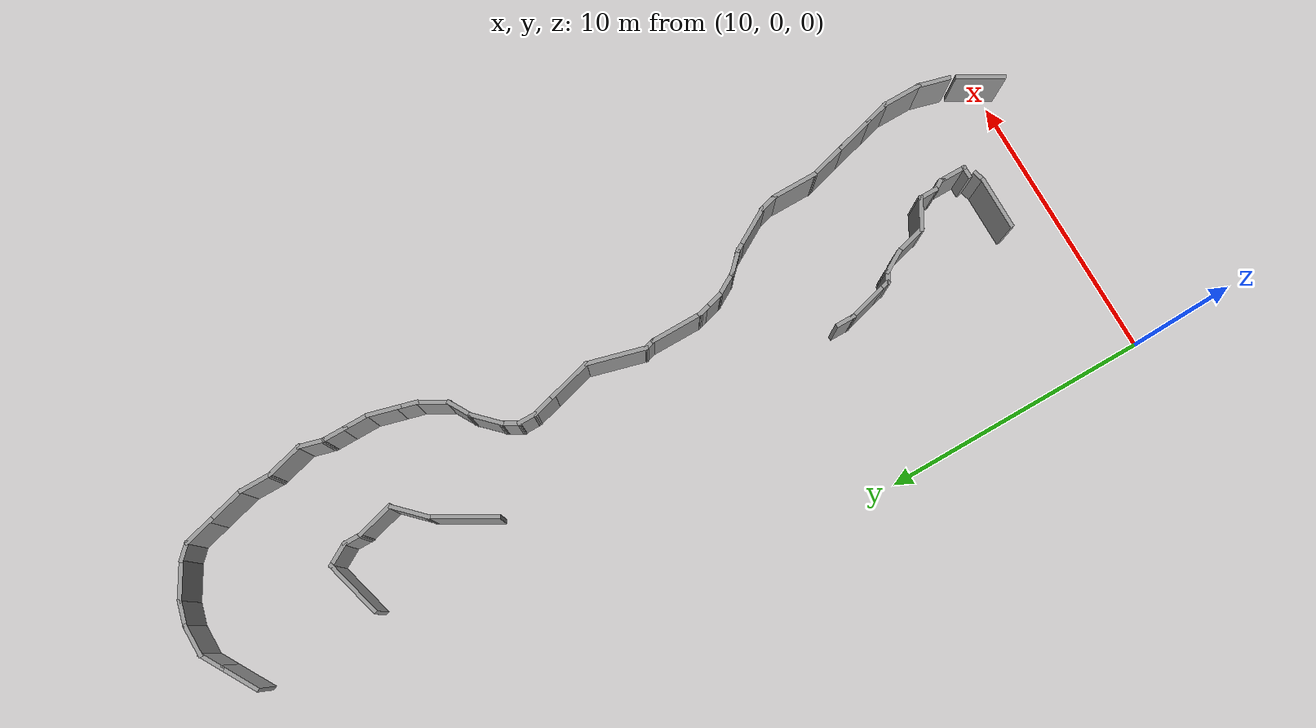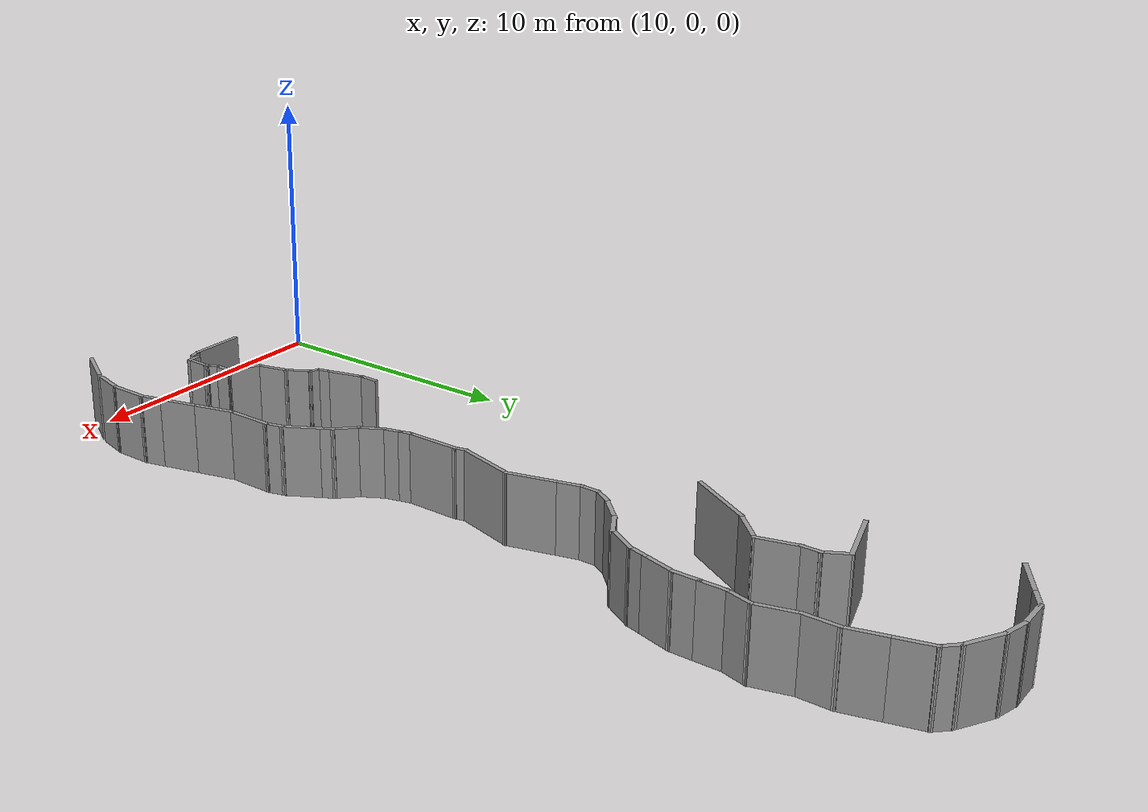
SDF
<sdf version="1.7">
 <world name="default">
  <model name="Untitled">
   <pose>0.112024 16.4674 0 0 -0 0</pose>
   <link name="Wall_100">
    <collision name="Wall_100_Collision">
     <geometry><box><size>1.5 0.15 2.5</size></box></geometry>
     <pose>0 0 1.25 0 -0 0</pose>
    </collision>
    <visual name="Wall_100_Visual">
     <pose>0 0 1.25 0 -0 0</pose>
     <geometry><box><size>1.5 0.15 2.5</size></box></geometry>
     <material>
      <script><uri>file://media/materials/scripts/gazebo.material</uri><name>Gazebo/Grey</name></script>
      <ambient>1 1 1 1</ambient>
     </material>
     <meta><layer>0</layer></meta>
    </visual>
    <pose>19.9845 -6.51025 0 0 -0 2.0944</pose>
   </link>
   <link name="Wall_101">
    <collision name="Wall_101_Collision">
     <geometry><box><size>0.5 0.15 2.5</size></box></geometry>
     <pose>0 0 1.25 0 -0 0</pose>
    </collision>
    <visual name="Wall_101_Visual">
     <pose>0 0 1.25 0 -0 0</pose>
     <geometry><box><size>0.5 0.15 2.5</size></box></geometry>
     <material>
      <script><uri>file://media/materials/scripts/gazebo.material</uri><name>Gazebo/Grey</name></script>
      <ambient>1 1 1 1</ambient>
     </material>
     <meta><layer>0</layer></meta>
    </visual>
    <pose>19.5595 -5.77413 0 0 -0 2.0944</pose>
   </link>
   <link name="Wall_102">
    <collision name="Wall_102_Collision">
     <geometry><box><size>1 0.15 2.5</size></box></geometry>
     <pose>0 0 1.25 0 -0 0</pose>
    </collision>
    <visual name="Wall_102_Visual">
     <pose>0 0 1.25 0 -0 0</pose>
     <geometry><box><size>1 0.15 2.5</size></box></geometry>
     <material>
      <script><uri>file://media/materials/scripts/gazebo.material</uri><name>Gazebo/Grey</name></script>
      <ambient>1 1 1 1</ambient>
     </material>
     <meta><layer>0</layer></meta>
    </visual>
    <pose>19.1715 -5.32205 0 0 -0 2.35619</pose>
   </link>
   <link name="Wall_103">
    <collision name="Wall_103_Collision">
     <geometry><box><size>1 0.15 2.5</size></box></geometry>
     <pose>0 0 1.25 0 -0 0</pose>
    </collision>
    <visual name="Wall_103_Visual">
     <pose>0 0 1.25 0 -0 0</pose>
     <geometry><box><size>1 0.15 2.5</size></box></geometry>
     <material>
      <script><uri>file://media/materials/scripts/gazebo.material</uri><name>Gazebo/Grey</name></script>
      <ambient>1 1 1 1</ambient>
     </material>
     <meta><layer>0</layer></meta>
    </visual>
    <pose>18.6585 -4.65347 0 0 -0 2.0944</pose>
   </link>
   <link name="Wall_104">
    <collision name="Wall_104_Collision">
     <geometry><box><size>0.75 0.15 2.5</size></box></geometry>
     <pose>0 0 1.25 0 -0 0</pose>
    </collision>
    <visual name="Wall_104_Visual">
     <pose>0 0 1.25 0 -0 0</pose>
     <geometry><box><size>0.75 0.15 2.5</size></box></geometry>
     <material>
      <script><uri>file://media/materials/scripts/gazebo.material</uri><name>Gazebo/Grey</name></script>
      <ambient>1 1 1 1</ambient>
     </material>
     <meta><layer>0</layer></meta>
    </visual>
    <pose>18.3683 -3.99564 0 0 -0 1.8326</pose>
   </link>
   <link name="Wall_105">
    <collision name="Wall_105_Collision">
     <geometry><box><size>0.5 0.15 2.5</size></box></geometry>
     <pose>0 0 1.25 0 -0 0</pose>
    </collision>
    <visual name="Wall_105_Visual">
     <pose>0 0 1.25 0 -0 0</pose>
     <geometry><box><size>0.5 0.15 2.5</size></box></geometry>
     <material>
      <script><uri>file://media/materials/scripts/gazebo.material</uri><name>Gazebo/Grey</name></script>
      <ambient>1 1 1 1</ambient>
     </material>
     <meta><layer>0</layer></meta>
    </visual>
    <pose>18.2454 -3.53682 0 0 -0 1.8326</pose>
   </link>
   <link name="Wall_106">
    <collision name="Wall_106_Collision">
     <geometry><box><size>2 0.15 2.5</size></box></geometry>
     <pose>0 0 1.25 0 -0 0</pose>
    </collision>
    <visual name="Wall_106_Visual">
     <pose>0 0 1.25 0 -0 0</pose>
     <geometry><box><size>2 0.15 2.5</size></box></geometry>
     <material>
      <script><uri>file://media/materials/scripts/gazebo.material</uri><name>Gazebo/Grey</name></script>
      <ambient>1 1 1 1</ambient>
     </material>
     <meta><layer>0</layer></meta>
    </visual>
    <pose>18.2001 -2.44278 0 0 -0 1.5708</pose>
   </link>
   <link name="Wall_107">
    <collision name="Wall_107_Collision">
     <geometry><box><size>0.5 0.15 2.5</size></box></geometry>
     <pose>0 0 1.25 0 -0 0</pose>
    </collision>
    <visual name="Wall_107_Visual">
     <pose>0 0 1.25 0 -0 0</pose>
     <geometry><box><size>0.5 0.15 2.5</size></box></geometry>
     <material>
      <script><uri>file://media/materials/scripts/gazebo.material</uri><name>Gazebo/Grey</name></script>
      <ambient>1 1 1 1</ambient>
     </material>
     <meta><layer>0</layer></meta>
    </visual>
    <pose>18.1548 -1.34875 0 0 -0 1.8326</pose>
   </link>
   <link name="Wall_108">
    <collision name="Wall_108_Collision">
     <geometry><box><size>2.25 0.15 2.5</size></box></geometry>
     <pose>0 0 1.25 0 -0 0</pose>
    </collision>
    <visual name="Wall_108_Visual">
     <pose>0 0 1.25 0 -0 0</pose>
     <geometry><box><size>2.25 0.15 2.5</size></box></geometry>
     <material>
      <script><uri>file://media/materials/scripts/gazebo.material</uri><name>Gazebo/Grey</name></script>
      <ambient>1 1 1 1</ambient>
     </material>
     <meta><layer>0</layer></meta>
    </visual>
    <pose>18.3813 -0.165486 0 0 -0 1.309</pose>
   </link>
   <link name="Wall_109">
    <collision name="Wall_109_Collision">
     <geometry><box><size>1.75 0.15 2.5</size></box></geometry>
     <pose>0 0 1.25 0 -0 0</pose>
    </collision>
    <visual name="Wall_109_Visual">
     <pose>0 0 1.25 0 -0 0</pose>
     <geometry><box><size>1.75 0.15 2.5</size></box></geometry>
     <material>
      <script><uri>file://media/materials/scripts/gazebo.material</uri><name>Gazebo/Grey</name></script>
      <ambient>1 1 1 1</ambient>
     </material>
     <meta><layer>0</layer></meta>
    </visual>
    <pose>18.446 1.62148 0 0 -0 1.8326</pose>
   </link>
   <link name="Wall_110">
    <collision name="Wall_110_Collision">
     <geometry><box><size>1 0.15 2.5</size></box></geometry>
     <pose>0 0 1.25 0 -0 0</pose>
    </collision>
    <visual name="Wall_110_Visual">
     <pose>0 0 1.25 0 -0 0</pose>
     <geometry><box><size>1 0.15 2.5</size></box></geometry>
     <material>
      <script><uri>file://media/materials/scripts/gazebo.material</uri><name>Gazebo/Grey</name></script>
      <ambient>1 1 1 1</ambient>
     </material>
     <meta><layer>0</layer></meta>
    </visual>
    <pose>18.1289 2.80473 0 0 -0 1.8326</pose>
   </link>
   <link name="Wall_111">
    <collision name="Wall_111_Collision">
     <geometry><box><size>0.75 0.15 2.5</size></box></geometry>
     <pose>0 0 1.25 0 -0 0</pose>
    </collision>
    <visual name="Wall_111_Visual">
     <pose>0 0 1.25 0 -0 0</pose>
     <geometry><box><size>0.75 0.15 2.5</size></box></geometry>
     <material>
      <script><uri>file://media/materials/scripts/gazebo.material</uri><name>Gazebo/Grey</name></script>
      <ambient>1 1 1 1</ambient>
     </material>
     <meta><layer>0</layer></meta>
    </visual>
    <pose>18.0189 3.51525 0 0 -0 1.5708</pose>
   </link>
   <link name="Wall_112">
    <collision name="Wall_112_Collision">
     <geometry><box><size>0.75 0.15 2.5</size></box></geometry>
     <pose>0 0 1.25 0 -0 0</pose>
    </collision>
    <visual name="Wall_112_Visual">
     <pose>0 0 1.25 0 -0 0</pose>
     <geometry><box><size>0.75 0.15 2.5</size></box></geometry>
     <material>
      <script><uri>file://media/materials/scripts/gazebo.material</uri><name>Gazebo/Grey</name></script>
      <ambient>1 1 1 1</ambient>
     </material>
     <meta><layer>0</layer></meta>
    </visual>
    <pose>18.1689 4.07506 0 0 -0 1.0472</pose>
   </link>
   <link name="Wall_113">
    <collision name="Wall_113_Collision">
     <geometry><box><size>1.25 0.15 2.5</size></box></geometry>
     <pose>0 0 1.25 0 -0 0</pose>
    </collision>
    <visual name="Wall_113_Visual">
     <pose>0 0 1.25 0 -0 0</pose>
     <geometry><box><size>1.25 0.15 2.5</size></box></geometry>
     <material>
      <script><uri>file://media/materials/scripts/gazebo.material</uri><name>Gazebo/Grey</name></script>
      <ambient>1 1 1 1</ambient>
     </material>
     <meta><layer>0</layer></meta>
    </visual>
    <pose>18.7078 4.72378 0 0 -0 0.785398</pose>
   </link>
   <link name="Wall_114">
    <collision name="Wall_114_Collision">
     <geometry><box><size>1 0.15 2.5</size></box></geometry>
     <pose>0 0 1.25 0 -0 0</pose>
    </collision>
    <visual name="Wall_114_Visual">
     <pose>0 0 1.25 0 -0 0</pose>
     <geometry><box><size>1 0.15 2.5</size></box></geometry>
     <material>
      <script><uri>file://media/materials/scripts/gazebo.material</uri><name>Gazebo/Grey</name></script>
      <ambient>1 1 1 1</ambient>
     </material>
     <meta><layer>0</layer></meta>
    </visual>
    <pose>19.4648 5.32519 0 0 -0 0.523599</pose>
   </link>
   <link name="Wall_115">
    <collision name="Wall_115_Collision">
     <geometry><box><size>1.25 0.15 2.5</size></box></geometry>
     <pose>0 0 1.25 0 -0 0</pose>
    </collision>
    <visual name="Wall_115_Visual">
     <pose>0 0 1.25 0 -0 0</pose>
     <geometry><box><size>1.25 0.15 2.5</size></box></geometry>
     <material>
      <script><uri>file://media/materials/scripts/gazebo.material</uri><name>Gazebo/Grey</name></script>
      <ambient>1 1 1 1</ambient>
     </material>
     <meta><layer>0</layer></meta>
    </visual>
    <pose>20.1078 6.014 0 0 -0 1.0472</pose>
   </link>
   <link name="Wall_116">
    <collision name="Wall_116_Collision">
     <geometry><box><size>0.75 0.15 2.5</size></box></geometry>
     <pose>0 0 1.25 0 -0 0</pose>
    </collision>
    <visual name="Wall_116_Visual">
     <pose>0 0 1.25 0 -0 0</pose>
     <geometry><box><size>0.75 0.15 2.5</size></box></geometry>
     <material>
      <script><uri>file://media/materials/scripts/gazebo.material</uri><name>Gazebo/Grey</name></script>
      <ambient>1 1 1 1</ambient>
     </material>
     <meta><layer>0</layer></meta>
    </visual>
    <pose>20.4605 6.78009 0 0 -0 1.309</pose>
   </link>
   <link name="Wall_117">
    <collision name="Wall_117_Collision">
     <geometry><box><size>1.25 0.15 2.5</size></box></geometry>
     <pose>0 0 1.25 0 -0 0</pose>
    </collision>
    <visual name="Wall_117_Visual">
     <pose>0 0 1.25 0 -0 0</pose>
     <geometry><box><size>1.25 0.15 2.5</size></box></geometry>
     <material>
      <script><uri>file://media/materials/scripts/gazebo.material</uri><name>Gazebo/Grey</name></script>
      <ambient>1 1 1 1</ambient>
     </material>
     <meta><layer>0</layer></meta>
    </visual>
    <pose>20.6805 7.60113 0 0 -0 1.309</pose>
   </link>
   <link name="Wall_118">
    <collision name="Wall_118_Collision">
     <geometry><box><size>1 0.15 2.5</size></box></geometry>
     <pose>0 0 1.25 0 -0 0</pose>
    </collision>
    <visual name="Wall_118_Visual">
     <pose>0 0 1.25 0 -0 0</pose>
     <geometry><box><size>1 0.15 2.5</size></box></geometry>
     <material>
      <script><uri>file://media/materials/scripts/gazebo.material</uri><name>Gazebo/Grey</name></script>
      <ambient>1 1 1 1</ambient>
     </material>
     <meta><layer>0</layer></meta>
    </visual>
    <pose>20.8228 8.55739 0 0 -0 1.5708</pose>
   </link>
   <link name="Wall_119">
    <collision name="Wall_119_Collision">
     <geometry><box><size>1 0.15 2.5</size></box></geometry>
     <pose>0 0 1.25 0 -0 0</pose>
    </collision>
    <visual name="Wall_119_Visual">
     <pose>0 0 1.25 0 -0 0</pose>
     <geometry><box><size>1 0.15 2.5</size></box></geometry>
     <material>
      <script><uri>file://media/materials/scripts/gazebo.material</uri><name>Gazebo/Grey</name></script>
      <ambient>1 1 1 1</ambient>
     </material>
     <meta><layer>0</layer></meta>
    </visual>
    <pose>20.8228 9.40739 0 0 -0 1.5708</pose>
   </link>
   <link name="Wall_120">
    <collision name="Wall_120_Collision">
     <geometry><box><size>1 0.15 2.5</size></box></geometry>
     <pose>0 0 1.25 0 -0 0</pose>
    </collision>
    <visual name="Wall_120_Visual">
     <pose>0 0 1.25 0 -0 0</pose>
     <geometry><box><size>1 0.15 2.5</size></box></geometry>
     <material>
      <script><uri>file://media/materials/scripts/gazebo.material</uri><name>Gazebo/Grey</name></script>
      <ambient>1 1 1 1</ambient>
     </material>
     <meta><layer>0</layer></meta>
    </visual>
    <pose>20.9328 10.2429 0 0 -0 1.309</pose>
   </link>
   <link name="Wall_121">
    <collision name="Wall_121_Collision">
     <geometry><box><size>1.5 0.15 2.5</size></box></geometry>
     <pose>0 0 1.25 0 -0 0</pose>
    </collision>
    <visual name="Wall_121_Visual">
     <pose>0 0 1.25 0 -0 0</pose>
     <geometry><box><size>1.5 0.15 2.5</size></box></geometry>
     <material>
      <script><uri>file://media/materials/scripts/gazebo.material</uri><name>Gazebo/Grey</name></script>
      <ambient>1 1 1 1</ambient>
     </material>
     <meta><layer>0</layer></meta>
    </visual>
    <pose>20.8681 11.3054 0 0 -0 1.8326</pose>
   </link>
   <link name="Wall_122">
    <collision name="Wall_122_Collision">
     <geometry><box><size>1.25 0.15 2.5</size></box></geometry>
     <pose>0 0 1.25 0 -0 0</pose>
    </collision>
    <visual name="Wall_122_Visual">
     <pose>0 0 1.25 0 -0 0</pose>
     <geometry><box><size>1.25 0.15 2.5</size></box></geometry>
     <material>
      <script><uri>file://media/materials/scripts/gazebo.material</uri><name>Gazebo/Grey</name></script>
      <ambient>1 1 1 1</ambient>
     </material>
     <meta><layer>0</layer></meta>
    </visual>
    <pose>20.6934 12.5074 0 0 -0 1.5708</pose>
   </link>
   <link name="Wall_123">
    <collision name="Wall_123_Collision">
     <geometry><box><size>1.5 0.15 2.5</size></box></geometry>
     <pose>0 0 1.25 0 -0 0</pose>
    </collision>
    <visual name="Wall_123_Visual">
     <pose>0 0 1.25 0 -0 0</pose>
     <geometry><box><size>1.5 0.15 2.5</size></box></geometry>
     <material>
      <script><uri>file://media/materials/scripts/gazebo.material</uri><name>Gazebo/Grey</name></script>
      <ambient>1 1 1 1</ambient>
     </material>
     <meta><layer>0</layer></meta>
    </visual>
    <pose>20.5187 13.7094 0 0 -0 1.8326</pose>
   </link>
   <link name="Wall_124">
    <collision name="Wall_124_Collision">
     <geometry><box><size>1.25 0.15 2.5</size></box></geometry>
     <pose>0 0 1.25 0 -0 0</pose>
    </collision>
    <visual name="Wall_124_Visual">
     <pose>0 0 1.25 0 -0 0</pose>
     <geometry><box><size>1.25 0.15 2.5</size></box></geometry>
     <material>
      <script><uri>file://media/materials/scripts/gazebo.material</uri><name>Gazebo/Grey</name></script>
      <ambient>1 1 1 1</ambient>
     </material>
     <meta><layer>0</layer></meta>
    </visual>
    <pose>20.2017 14.8927 0 0 -0 1.8326</pose>
   </link>
   <link name="Wall_125">
    <collision name="Wall_125_Collision">
     <geometry><box><size>0.75 0.15 2.5</size></box></geometry>
     <pose>0 0 1.25 0 -0 0</pose>
    </collision>
    <visual name="Wall_125_Visual">
     <pose>0 0 1.25 0 -0 0</pose>
     <geometry><box><size>0.75 0.15 2.5</size></box></geometry>
     <material>
      <script><uri>file://media/materials/scripts/gazebo.material</uri><name>Gazebo/Grey</name></script>
      <ambient>1 1 1 1</ambient>
     </material>
     <meta><layer>0</layer></meta>
    </visual>
    <pose>19.8472 15.6361 0 0 -0 2.35619</pose>
   </link>
   <link name="Wall_126">
    <collision name="Wall_126_Collision">
     <geometry><box><size>1.5 0.15 2.5</size></box></geometry>
     <pose>0 0 1.25 0 -0 0</pose>
    </collision>
    <visual name="Wall_126_Visual">
     <pose>0 0 1.25 0 -0 0</pose>
     <geometry><box><size>1.5 0.15 2.5</size></box></geometry>
     <material>
      <script><uri>file://media/materials/scripts/gazebo.material</uri><name>Gazebo/Grey</name></script>
      <ambient>1 1 1 1</ambient>
     </material>
     <meta><layer>0</layer></meta>
    </visual>
    <pose>19.0505 16.1857 0 0 -0 2.61799</pose>
   </link>
   <link name="Wall_127">
    <collision name="Wall_127_Collision">
     <geometry><box><size>1 0.15 2.5</size></box></geometry>
     <pose>0 0 1.25 0 -0 0</pose>
    </collision>
    <visual name="Wall_127_Visual">
     <pose>0 0 1.25 0 -0 0</pose>
     <geometry><box><size>1 0.15 2.5</size></box></geometry>
     <material>
      <script><uri>file://media/materials/scripts/gazebo.material</uri><name>Gazebo/Grey</name></script>
      <ambient>1 1 1 1</ambient>
     </material>
     <meta><layer>0</layer></meta>
    </visual>
    <pose>18.0554 16.6332 0 0 -0 2.87979</pose>
   </link>
   <link name="Wall_128">
    <collision name="Wall_128_Collision">
     <geometry><box><size>1.25 0.15 2.5</size></box></geometry>
     <pose>0 0 1.25 0 -0 0</pose>
    </collision>
    <visual name="Wall_128_Visual">
     <pose>0 0 1.25 0 -0 0</pose>
     <geometry><box><size>1.25 0.15 2.5</size></box></geometry>
     <material>
      <script><uri>file://media/materials/scripts/gazebo.material</uri><name>Gazebo/Grey</name></script>
      <ambient>1 1 1 1</ambient>
     </material>
     <meta><layer>0</layer></meta>
    </visual>
    <pose>17.0949 16.7432 0 0 -0 3.14159</pose>
   </link>
   <link name="Wall_129">
    <collision name="Wall_129_Collision">
     <geometry><box><size>1 0.15 2.5</size></box></geometry>
     <pose>0 0 1.25 0 -0 0</pose>
    </collision>
    <visual name="Wall_129_Visual">
     <pose>0 0 1.25 0 -0 0</pose>
     <geometry><box><size>1 0.15 2.5</size></box></geometry>
     <material>
      <script><uri>file://media/materials/scripts/gazebo.material</uri><name>Gazebo/Grey</name></script>
      <ambient>1 1 1 1</ambient>
     </material>
     <meta><layer>0</layer></meta>
    </visual>
    <pose>16.1768 16.5307 0 0 -0 -2.61799</pose>
   </link>
   <link name="Wall_130">
    <collision name="Wall_130_Collision">
     <geometry><box><size>1.5 0.15 2.5</size></box></geometry>
     <pose>0 0 1.25 0 -0 0</pose>
    </collision>
    <visual name="Wall_130_Visual">
     <pose>0 0 1.25 0 -0 0</pose>
     <geometry><box><size>1.5 0.15 2.5</size></box></geometry>
     <material>
      <script><uri>file://media/materials/scripts/gazebo.material</uri><name>Gazebo/Grey</name></script>
      <ambient>1 1 1 1</ambient>
     </material>
     <meta><layer>0</layer></meta>
    </visual>
    <pose>15.2242 15.9807 0 0 -0 -2.61799</pose>
   </link>
   <link name="Wall_18">
    <collision name="Wall_18_Collision">
     <geometry><box><size>2 0.15 2.5</size></box></geometry>
     <pose>0 0 1.25 0 -0 0</pose>
    </collision>
    <visual name="Wall_18_Visual">
     <pose>0 0 1.25 0 -0 0</pose>
     <geometry><box><size>2 0.15 2.5</size></box></geometry>
     <material>
      <script><uri>file://media/materials/scripts/gazebo.material</uri><name>Gazebo/Grey</name></script>
      <ambient>1 1 1 1</ambient>
     </material>
     <meta><layer>0</layer></meta>
    </visual>
    <pose>16.4497 -14.2243 0 0 -0 0</pose>
   </link>
   <link name="Wall_19">
    <collision name="Wall_19_Collision">
     <geometry><box><size>0.5 0.15 2.5</size></box></geometry>
     <pose>0 0 1.25 0 -0 0</pose>
    </collision>
    <visual name="Wall_19_Visual">
     <pose>0 0 1.25 0 -0 0</pose>
     <geometry><box><size>0.5 0.15 2.5</size></box></geometry>
     <material>
      <script><uri>file://media/materials/scripts/gazebo.material</uri><name>Gazebo/Grey</name></script>
      <ambient>1 1 1 1</ambient>
     </material>
     <meta><layer>0</layer></meta>
    </visual>
    <pose>17.5438 -14.179 0 0 -0 0.261799</pose>
   </link>
   <link name="Wall_30">
    <collision name="Wall_30_Collision">
     <geometry><box><size>0.5 0.15 2.5</size></box></geometry>
     <pose>0 0 1.25 0 -0 0</pose>
    </collision>
    <visual name="Wall_30_Visual">
     <pose>0 0 1.25 0 -0 0</pose>
     <geometry><box><size>0.5 0.15 2.5</size></box></geometry>
     <material>
      <script><uri>file://media/materials/scripts/gazebo.material</uri><name>Gazebo/Grey</name></script>
      <ambient>1 1 1 1</ambient>
     </material>
     <meta><layer>0</layer></meta>
    </visual>
    <pose>17.9162 -13.8837 0 0 -0 0</pose>
   </link>
   <link name="Wall_31">
    <collision name="Wall_31_Collision">
     <geometry><box><size>1 0.15 2.5</size></box></geometry>
     <pose>0 0 1.25 0 -0 0</pose>
    </collision>
    <visual name="Wall_31_Visual">
     <pose>0 0 1.25 0 -0 0</pose>
     <geometry><box><size>1 0.15 2.5</size></box></geometry>
     <material>
      <script><uri>file://media/materials/scripts/gazebo.material</uri><name>Gazebo/Grey</name></script>
      <ambient>1 1 1 1</ambient>
     </material>
     <meta><layer>0</layer></meta>
    </visual>
    <pose>18.0912 -13.4587 0 0 -0 1.5708</pose>
   </link>
   <link name="Wall_32">
    <collision name="Wall_32_Collision">
     <geometry><box><size>0.25 0.15 2.5</size></box></geometry>
     <pose>0 0 1.25 0 -0 0</pose>
    </collision>
    <visual name="Wall_32_Visual">
     <pose>0 0 1.25 0 -0 0</pose>
     <geometry><box><size>0.25 0.15 2.5</size></box></geometry>
     <material>
      <script><uri>file://media/materials/scripts/gazebo.material</uri><name>Gazebo/Grey</name></script>
      <ambient>1 1 1 1</ambient>
     </material>
     <meta><layer>0</layer></meta>
    </visual>
    <pose>18.0912 -12.9837 0 0 -0 1.5708</pose>
   </link>
   <link name="Wall_33">
    <collision name="Wall_33_Collision">
     <geometry><box><size>0.5 0.15 2.5</size></box></geometry>
     <pose>0 0 1.25 0 -0 0</pose>
    </collision>
    <visual name="Wall_33_Visual">
     <pose>0 0 1.25 0 -0 0</pose>
     <geometry><box><size>0.5 0.15 2.5</size></box></geometry>
     <material>
      <script><uri>file://media/materials/scripts/gazebo.material</uri><name>Gazebo/Grey</name></script>
      <ambient>1 1 1 1</ambient>
     </material>
     <meta><layer>0</layer></meta>
    </visual>
    <pose>18.0037 -12.7821 0 0 -0 2.0944</pose>
   </link>
   <link name="Wall_34">
    <collision name="Wall_34_Collision">
     <geometry><box><size>0.75 0.15 2.5</size></box></geometry>
     <pose>0 0 1.25 0 -0 0</pose>
    </collision>
    <visual name="Wall_34_Visual">
     <pose>0 0 1.25 0 -0 0</pose>
     <geometry><box><size>0.75 0.15 2.5</size></box></geometry>
     <material>
      <script><uri>file://media/materials/scripts/gazebo.material</uri><name>Gazebo/Grey</name></script>
      <ambient>1 1 1 1</ambient>
     </material>
     <meta><layer>0</layer></meta>
    </visual>
    <pose>17.9162 -12.3306 0 0 -0 1.5708</pose>
   </link>
   <link name="Wall_35">
    <collision name="Wall_35_Collision">
     <geometry><box><size>1.25 0.15 2.5</size></box></geometry>
     <pose>0 0 1.25 0 -0 0</pose>
    </collision>
    <visual name="Wall_35_Visual">
     <pose>0 0 1.25 0 -0 0</pose>
     <geometry><box><size>1.25 0.15 2.5</size></box></geometry>
     <material>
      <script><uri>file://media/materials/scripts/gazebo.material</uri><name>Gazebo/Grey</name></script>
      <ambient>1 1 1 1</ambient>
     </material>
     <meta><layer>0</layer></meta>
    </visual>
    <pose>17.4399 -11.7556 0 0 -0 2.61799</pose>
   </link>
   <link name="Wall_36">
    <collision name="Wall_36_Collision">
     <geometry><box><size>1.25 0.15 2.5</size></box></geometry>
     <pose>0 0 1.25 0 -0 0</pose>
    </collision>
    <visual name="Wall_36_Visual">
     <pose>0 0 1.25 0 -0 0</pose>
     <geometry><box><size>1.25 0.15 2.5</size></box></geometry>
     <material>
      <script><uri>file://media/materials/scripts/gazebo.material</uri><name>Gazebo/Grey</name></script>
      <ambient>1 1 1 1</ambient>
     </material>
     <meta><layer>0</layer></meta>
    </visual>
    <pose>16.8212 -10.9493 0 0 -0 1.8326</pose>
   </link>
   <link name="Wall_37">
    <collision name="Wall_37_Collision">
     <geometry><box><size>1 0.15 2.5</size></box></geometry>
     <pose>0 0 1.25 0 -0 0</pose>
    </collision>
    <visual name="Wall_37_Visual">
     <pose>0 0 1.25 0 -0 0</pose>
     <geometry><box><size>1 0.15 2.5</size></box></geometry>
     <material>
      <script><uri>file://media/materials/scripts/gazebo.material</uri><name>Gazebo/Grey</name></script>
      <ambient>1 1 1 1</ambient>
     </material>
     <meta><layer>0</layer></meta>
    </visual>
    <pose>16.4664 -10.05 0 0 -0 2.0944</pose>
   </link>
   <link name="Wall_38">
    <collision name="Wall_38_Collision">
     <geometry><box><size>0.5 0.15 2.5</size></box></geometry>
     <pose>0 0 1.25 0 -0 0</pose>
    </collision>
    <visual name="Wall_38_Visual">
     <pose>0 0 1.25 0 -0 0</pose>
     <geometry><box><size>0.5 0.15 2.5</size></box></geometry>
     <material>
      <script><uri>file://media/materials/scripts/gazebo.material</uri><name>Gazebo/Grey</name></script>
      <ambient>1 1 1 1</ambient>
     </material>
     <meta><layer>0</layer></meta>
    </visual>
    <pose>16.1023 -9.59441 0 0 -0 2.61799</pose>
   </link>
   <link name="Wall_39">
    <collision name="Wall_39_Collision">
     <geometry><box><size>0.5 0.15 2.5</size></box></geometry>
     <pose>0 0 1.25 0 -0 0</pose>
    </collision>
    <visual name="Wall_39_Visual">
     <pose>0 0 1.25 0 -0 0</pose>
     <geometry><box><size>0.5 0.15 2.5</size></box></geometry>
     <material>
      <script><uri>file://media/materials/scripts/gazebo.material</uri><name>Gazebo/Grey</name></script>
      <ambient>1 1 1 1</ambient>
     </material>
     <meta><layer>0</layer></meta>
    </visual>
    <pose>15.9055 -9.33788 0 0 -0 1.8326</pose>
   </link>
   <link name="Wall_40">
    <collision name="Wall_40_Collision">
     <geometry><box><size>1.5 0.15 2.5</size></box></geometry>
     <pose>0 0 1.25 0 -0 0</pose>
    </collision>
    <visual name="Wall_40_Visual">
     <pose>0 0 1.25 0 -0 0</pose>
     <geometry><box><size>1.5 0.15 2.5</size></box></geometry>
     <material>
      <script><uri>file://media/materials/scripts/gazebo.material</uri><name>Gazebo/Grey</name></script>
      <ambient>1 1 1 1</ambient>
     </material>
     <meta><layer>0</layer></meta>
    </visual>
    <pose>15.6855 -8.51684 0 0 -0 1.8326</pose>
   </link>
   <link name="Wall_41">
    <collision name="Wall_41_Collision">
     <geometry><box><size>0.75 0.15 2.5</size></box></geometry>
     <pose>0 0 1.25 0 -0 0</pose>
    </collision>
    <visual name="Wall_41_Visual">
     <pose>0 0 1.25 0 -0 0</pose>
     <geometry><box><size>0.75 0.15 2.5</size></box></geometry>
     <material>
      <script><uri>file://media/materials/scripts/gazebo.material</uri><name>Gazebo/Grey</name></script>
      <ambient>1 1 1 1</ambient>
     </material>
     <meta><layer>0</layer></meta>
    </visual>
    <pose>15.5108 -7.56484 0 0 -0 1.5708</pose>
   </link>
   <link name="Wall_52">
    <collision name="Wall_52_Collision">
     <geometry><box><size>2.5 0.15 2.5</size></box></geometry>
     <pose>0 0 1.25 0 -0 0</pose>
    </collision>
    <visual name="Wall_52_Visual">
     <pose>0 0 1.25 0 -0 0</pose>
     <geometry><box><size>2.5 0.15 2.5</size></box></geometry>
     <material>
      <script><uri>file://media/materials/scripts/gazebo.material</uri><name>Gazebo/Grey</name></script>
      <ambient>1 1 1 1</ambient>
     </material>
     <meta><layer>0</layer></meta>
    </visual>
    <pose>16.2043 6.99203 0 0 -0 1.0472</pose>
   </link>
   <link name="Wall_53">
    <collision name="Wall_53_Collision">
     <geometry><box><size>1.5 0.15 2.5</size></box></geometry>
     <pose>0 0 1.25 0 -0 0</pose>
    </collision>
    <visual name="Wall_53_Visual">
     <pose>0 0 1.25 0 -0 0</pose>
     <geometry><box><size>1.5 0.15 2.5</size></box></geometry>
     <material>
      <script><uri>file://media/materials/scripts/gazebo.material</uri><name>Gazebo/Grey</name></script>
      <ambient>1 1 1 1</ambient>
     </material>
     <meta><layer>0</layer></meta>
    </visual>
    <pose>17.2691 8.4869 0 0 -0 0.785398</pose>
   </link>
   <link name="Wall_54">
    <collision name="Wall_54_Collision">
     <geometry><box><size>1.5 0.15 2.5</size></box></geometry>
     <pose>0 0 1.25 0 -0 0</pose>
    </collision>
    <visual name="Wall_54_Visual">
     <pose>0 0 1.25 0 -0 0</pose>
     <geometry><box><size>1.5 0.15 2.5</size></box></geometry>
     <material>
      <script><uri>file://media/materials/scripts/gazebo.material</uri><name>Gazebo/Grey</name></script>
      <ambient>1 1 1 1</ambient>
     </material>
     <meta><layer>0</layer></meta>
    </visual>
    <pose>17.5717 9.6162 0 0 -0 1.8326</pose>
   </link>
   <link name="Wall_55">
    <collision name="Wall_55_Collision">
     <geometry><box><size>0.75 0.15 2.5</size></box></geometry>
     <pose>0 0 1.25 0 -0 0</pose>
    </collision>
    <visual name="Wall_55_Visual">
     <pose>0 0 1.25 0 -0 0</pose>
     <geometry><box><size>0.75 0.15 2.5</size></box></geometry>
     <material>
      <script><uri>file://media/materials/scripts/gazebo.material</uri><name>Gazebo/Grey</name></script>
      <ambient>1 1 1 1</ambient>
     </material>
     <meta><layer>0</layer></meta>
    </visual>
    <pose>17.397 10.5682 0 0 -0 1.5708</pose>
   </link>
   <link name="Wall_56">
    <collision name="Wall_56_Collision">
     <geometry><box><size>1 0.15 2.5</size></box></geometry>
     <pose>0 0 1.25 0 -0 0</pose>
    </collision>
    <visual name="Wall_56_Visual">
     <pose>0 0 1.25 0 -0 0</pose>
     <geometry><box><size>1 0.15 2.5</size></box></geometry>
     <material>
      <script><uri>file://media/materials/scripts/gazebo.material</uri><name>Gazebo/Grey</name></script>
      <ambient>1 1 1 1</ambient>
     </material>
     <meta><layer>0</layer></meta>
    </visual>
    <pose>17.1845 11.2363 0 0 -0 2.0944</pose>
   </link>
   <link name="Wall_57">
    <collision name="Wall_57_Collision">
     <geometry><box><size>2.25 0.15 2.5</size></box></geometry>
     <pose>0 0 1.25 0 -0 0</pose>
    </collision>
    <visual name="Wall_57_Visual">
     <pose>0 0 1.25 0 -0 0</pose>
     <geometry><box><size>2.25 0.15 2.5</size></box></geometry>
     <material>
      <script><uri>file://media/materials/scripts/gazebo.material</uri><name>Gazebo/Grey</name></script>
      <ambient>1 1 1 1</ambient>
     </material>
     <meta><layer>0</layer></meta>
    </visual>
    <pose>15.9578 11.3326 0 0 -0 -2.87979</pose>
   </link>
   <link name="Wall_91">
    <collision name="Wall_91_Collision">
     <geometry><box><size>1.75 0.15 2.5</size></box></geometry>
     <pose>0 0 1.25 0 -0 0</pose>
    </collision>
    <visual name="Wall_91_Visual">
     <pose>0 0 1.25 0 -0 0</pose>
     <geometry><box><size>1.75 0.15 2.5</size></box></geometry>
     <material>
      <script><uri>file://media/materials/scripts/gazebo.material</uri><name>Gazebo/Grey</name></script>
      <ambient>1 1 1 1</ambient>
     </material>
     <meta><layer>0</layer></meta>
    </visual>
    <pose>20.589 -16.1147 0 0 -0 -2.0944</pose>
   </link>
   <link name="Wall_93">
    <collision name="Wall_93_Collision">
     <geometry><box><size>1.25 0.15 2.5</size></box></geometry>
     <pose>0 0 1.25 0 -0 0</pose>
    </collision>
    <visual name="Wall_93_Visual">
     <pose>0 0 1.25 0 -0 0</pose>
     <geometry><box><size>1.25 0.15 2.5</size></box></geometry>
     <material>
      <script><uri>file://media/materials/scripts/gazebo.material</uri><name>Gazebo/Grey</name></script>
      <ambient>1 1 1 1</ambient>
     </material>
     <meta><layer>0</layer></meta>
    </visual>
    <pose>21.2537 -14.5847 0 0 -0 1.309</pose>
   </link>
   <link name="Wall_94">
    <collision name="Wall_94_Collision">
     <geometry><box><size>1.5 0.15 2.5</size></box></geometry>
     <pose>0 0 1.25 0 -0 0</pose>
    </collision>
    <visual name="Wall_94_Visual">
     <pose>0 0 1.25 0 -0 0</pose>
     <geometry><box><size>1.5 0.15 2.5</size></box></geometry>
     <material>
      <script><uri>file://media/materials/scripts/gazebo.material</uri><name>Gazebo/Grey</name></script>
      <ambient>1 1 1 1</ambient>
     </material>
     <meta><layer>0</layer></meta>
    </visual>
    <pose>21.3961 -13.3784 0 0 -0 1.5708</pose>
   </link>
   <link name="Wall_95">
    <collision name="Wall_95_Collision">
     <geometry><box><size>1 0.15 2.5</size></box></geometry>
     <pose>0 0 1.25 0 -0 0</pose>
    </collision>
    <visual name="Wall_95_Visual">
     <pose>0 0 1.25 0 -0 0</pose>
     <geometry><box><size>1 0.15 2.5</size></box></geometry>
     <material>
      <script><uri>file://media/materials/scripts/gazebo.material</uri><name>Gazebo/Grey</name></script>
      <ambient>1 1 1 1</ambient>
     </material>
     <meta><layer>0</layer></meta>
    </visual>
    <pose>21.2861 -12.2929 0 0 -0 1.8326</pose>
   </link>
   <link name="Wall_96">
    <collision name="Wall_96_Collision">
     <geometry><box><size>1.5 0.15 2.5</size></box></geometry>
     <pose>0 0 1.25 0 -0 0</pose>
    </collision>
    <visual name="Wall_96_Visual">
     <pose>0 0 1.25 0 -0 0</pose>
     <geometry><box><size>1.5 0.15 2.5</size></box></geometry>
     <material>
      <script><uri>file://media/materials/scripts/gazebo.material</uri><name>Gazebo/Grey</name></script>
      <ambient>1 1 1 1</ambient>
     </material>
     <meta><layer>0</layer></meta>
    </visual>
    <pose>21.0014 -11.2304 0 0 -0 1.8326</pose>
   </link>
   <link name="Wall_97">
    <collision name="Wall_97_Collision">
     <geometry><box><size>1.5 0.15 2.5</size></box></geometry>
     <pose>0 0 1.25 0 -0 0</pose>
    </collision>
    <visual name="Wall_97_Visual">
     <pose>0 0 1.25 0 -0 0</pose>
     <geometry><box><size>1.5 0.15 2.5</size></box></geometry>
     <material>
      <script><uri>file://media/materials/scripts/gazebo.material</uri><name>Gazebo/Grey</name></script>
      <ambient>1 1 1 1</ambient>
     </material>
     <meta><layer>0</layer></meta>
    </visual>
    <pose>20.652 -9.92637 0 0 -0 1.8326</pose>
   </link>
   <link name="Wall_98">
    <collision name="Wall_98_Collision">
     <geometry><box><size>1.75 0.15 2.5</size></box></geometry>
     <pose>0 0 1.25 0 -0 0</pose>
    </collision>
    <visual name="Wall_98_Visual">
     <pose>0 0 1.25 0 -0 0</pose>
     <geometry><box><size>1.75 0.15 2.5</size></box></geometry>
     <material>
      <script><uri>file://media/materials/scripts/gazebo.material</uri><name>Gazebo/Grey</name></script>
      <ambient>1 1 1 1</ambient>
     </material>
     <meta><layer>0</layer></meta>
    </visual>
    <pose>20.4773 -8.47437 0 0 -0 1.5708</pose>
   </link>
   <link name="Wall_99">
    <collision name="Wall_99_Collision">
     <geometry><box><size>0.75 0.15 2.5</size></box></geometry>
     <pose>0 0 1.25 0 -0 0</pose>
    </collision>
    <visual name="Wall_99_Visual">
     <pose>0 0 1.25 0 -0 0</pose>
     <geometry><box><size>0.75 0.15 2.5</size></box></geometry>
     <material>
      <script><uri>file://media/materials/scripts/gazebo.material</uri><name>Gazebo/Grey</name></script>
      <ambient>1 1 1 1</ambient>
     </material>
     <meta><layer>0</layer></meta>
    </visual>
    <pose>20.3996 -7.3846 0 0 -0 1.8326</pose>
   </link>
   <static>1</static>
  </model>
 </world>
</sdf>
